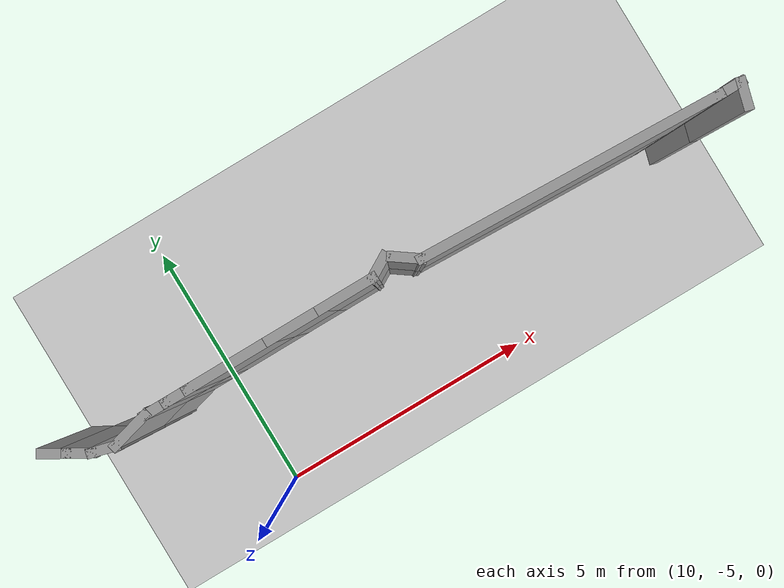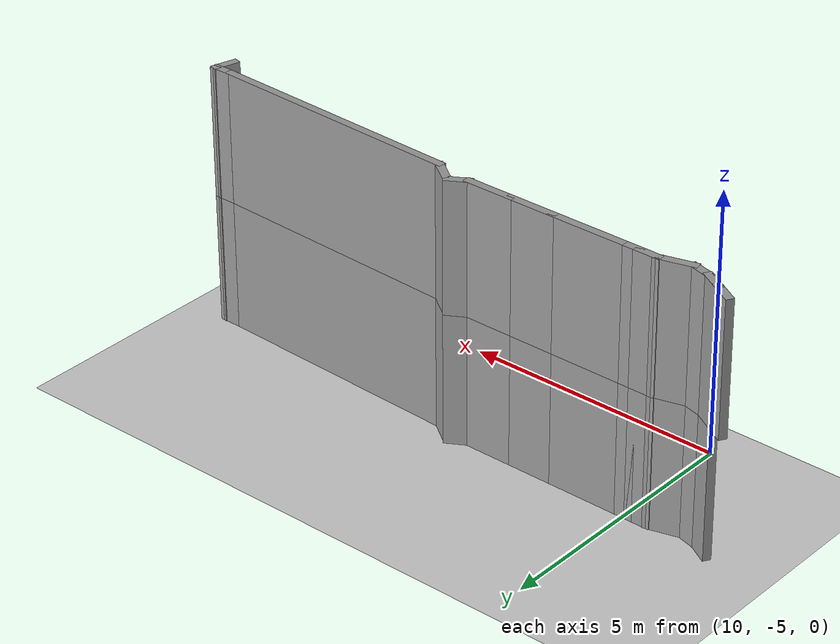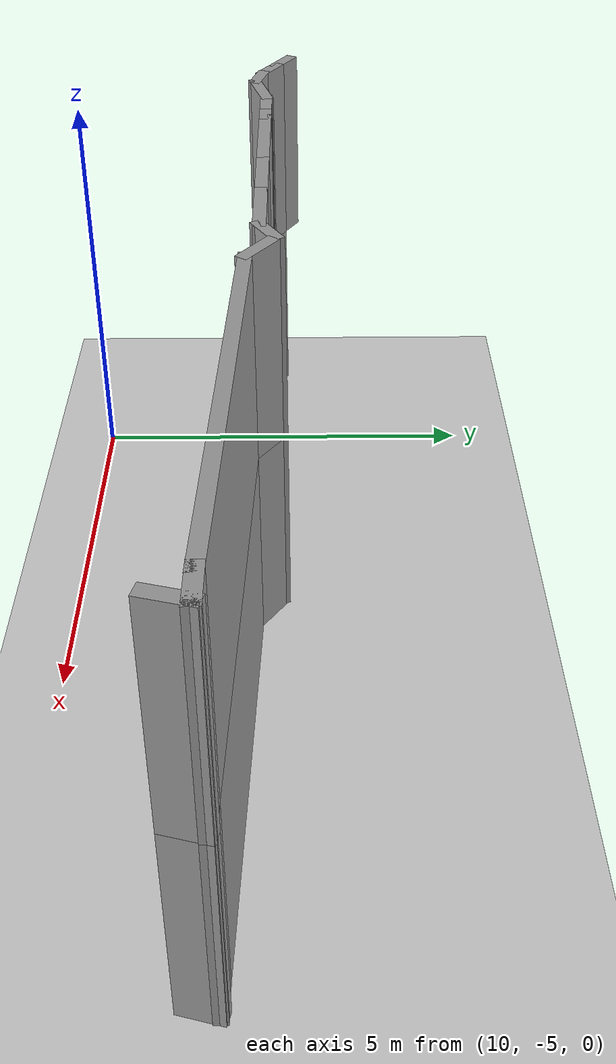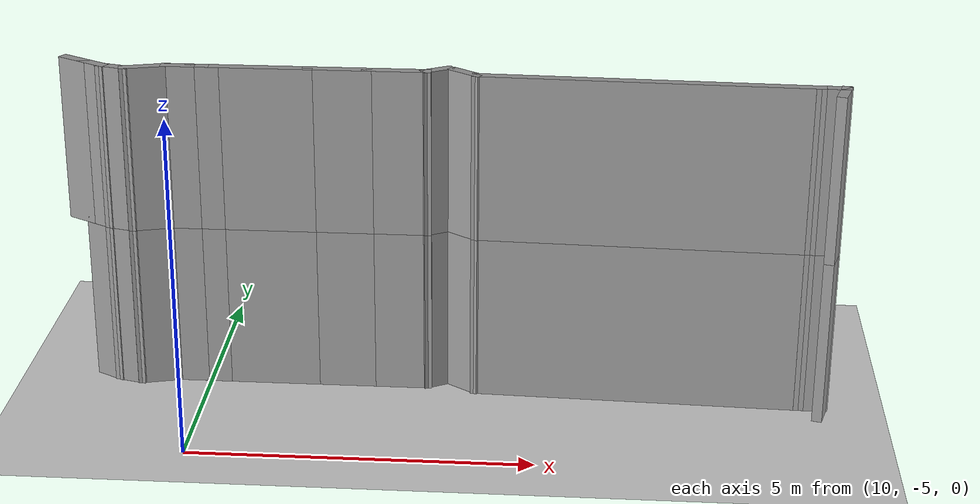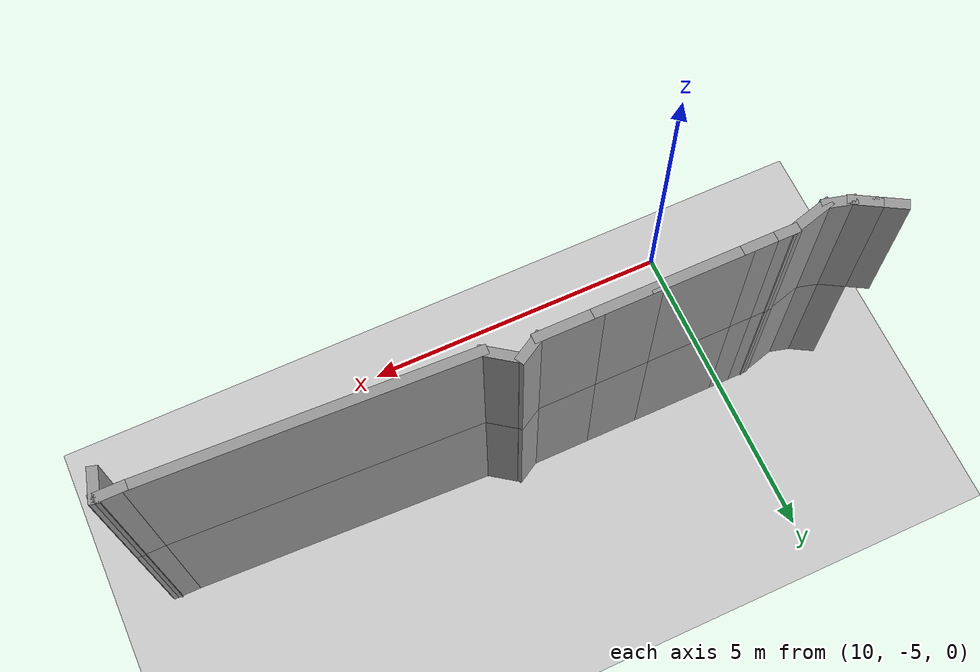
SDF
<sdf version="1.7">
 <world name="default">
  <model name="ground_plane">
   <static>1</static>
   <link name="link">
    <collision name="collision">
     <geometry><plane><normal>0 0 1</normal><size>100 100</size></plane></geometry>
     <surface>
      <contact><collide_bitmask>65535</collide_bitmask></contact>
      <friction><ode><mu>100</mu><mu2>50</mu2></ode></friction>
     </surface>
    </collision>
    <visual name="visual">
     <cast_shadows>0</cast_shadows>
     <geometry><plane><normal>0 0 1</normal><size>100 100</size></plane></geometry>
     <material>
      <script><uri>file://media/materials/scripts/gazebo.material</uri><name>Gazebo/Grey</name></script>
     </material>
    </visual>
   </link>
  </model>
  <model name="EnvDC01">
   <link name="Wall_133">
    <pose>12.4484 3.28154 0 0 -0 3.14159</pose>
    <visual name="Wall_133_Visual">
     <pose>0 0 1.25 0 -0 0</pose>
     <geometry><box><size>0.5 0.15 2.5</size></box></geometry>
     <material>
      <script><uri>file://media/materials/scripts/gazebo.material</uri><name>Gazebo/Grey</name></script>
      <ambient>1 1 1 1</ambient>
      <shader type="pixel"/>
     </material>
     <meta><layer>0</layer></meta>
    </visual>
    <collision name="Wall_133_Collision">
     <pose>0 0 1.25 0 -0 0</pose>
     <geometry><box><size>0.5 0.15 2.5</size></box></geometry>
     <surface>
      <friction>
       <ode><mu>1</mu><mu2>1</mu2><fdir1>0 0 0</fdir1><slip1>0</slip1><slip2>0</slip2></ode>
       <torsional>
        <coefficient>1</coefficient>
        <patch_radius>0</patch_radius>
        <surface_radius>0</surface_radius>
        <use_patch_radius>1</use_patch_radius>
        <ode><slip>0</slip></ode>
       </torsional>
      </friction>
      <bounce><restitution_coefficient>0</restitution_coefficient><threshold>1e+06</threshold></bounce>
      <contact>
       <collide_without_contact>0</collide_without_contact>
       <collide_without_contact_bitmask>1</collide_without_contact_bitmask>
       <collide_bitmask>1</collide_bitmask>
       <ode>
        <soft_cfm>0</soft_cfm>
        <soft_erp>0.2</soft_erp>
        <kp>1e+13</kp>
        <kd>1</kd>
        <max_vel>0.01</max_vel>
        <min_depth>0</min_depth>
       </ode>
       <bullet>
        <split_impulse>1</split_impulse>
        <split_impulse_penetration_threshold>-0.01</split_impulse_penetration_threshold>
        <soft_cfm>0</soft_cfm>
        <soft_erp>0.2</soft_erp>
        <kp>1e+13</kp>
        <kd>1</kd>
       </bullet>
      </contact>
     </surface>
    </collision>
   </link>
   <link name="Wall_134">
    <pose>9.8712 3.37676 0 0 -0 3.10198</pose>
    <visual name="Wall_134_Visual">
     <pose>0 0 1.25 0 -0 0</pose>
     <geometry><box><size>4.9582 0.15 2.5</size></box></geometry>
     <material>
      <script><uri>file://media/materials/scripts/gazebo.material</uri><name>Gazebo/Grey</name></script>
      <ambient>1 1 1 1</ambient>
      <shader type="pixel"/>
     </material>
     <meta><layer>0</layer></meta>
    </visual>
    <collision name="Wall_134_Collision">
     <pose>0 0 1.25 0 -0 0</pose>
     <geometry><box><size>4.9582 0.15 2.5</size></box></geometry>
     <surface>
      <friction>
       <ode><mu>1</mu><mu2>1</mu2><fdir1>0 0 0</fdir1><slip1>0</slip1><slip2>0</slip2></ode>
       <torsional>
        <coefficient>1</coefficient>
        <patch_radius>0</patch_radius>
        <surface_radius>0</surface_radius>
        <use_patch_radius>1</use_patch_radius>
        <ode><slip>0</slip></ode>
       </torsional>
      </friction>
      <bounce><restitution_coefficient>0</restitution_coefficient><threshold>1e+06</threshold></bounce>
      <contact>
       <collide_without_contact>0</collide_without_contact>
       <collide_without_contact_bitmask>1</collide_without_contact_bitmask>
       <collide_bitmask>1</collide_bitmask>
       <ode>
        <soft_cfm>0</soft_cfm>
        <soft_erp>0.2</soft_erp>
        <kp>1e+13</kp>
        <kd>1</kd>
        <max_vel>0.01</max_vel>
        <min_depth>0</min_depth>
       </ode>
       <bullet>
        <split_impulse>1</split_impulse>
        <split_impulse_penetration_threshold>-0.01</split_impulse_penetration_threshold>
        <soft_cfm>0</soft_cfm>
        <soft_erp>0.2</soft_erp>
        <kp>1e+13</kp>
        <kd>1</kd>
       </bullet>
      </contact>
     </surface>
    </collision>
   </link>
   <link name="Wall_135">
    <pose>7.2977 3.59466 0 0 -0 2.52004</pose>
    <visual name="Wall_135_Visual">
     <pose>0 0 1.25 0 -0 0</pose>
     <geometry><box><size>0.571407 0.15 2.5</size></box></geometry>
     <material>
      <script><uri>file://media/materials/scripts/gazebo.material</uri><name>Gazebo/Grey</name></script>
      <ambient>1 1 1 1</ambient>
      <shader type="pixel"/>
     </material>
     <meta><layer>0</layer></meta>
    </visual>
    <collision name="Wall_135_Collision">
     <pose>0 0 1.25 0 -0 0</pose>
     <geometry><box><size>0.571407 0.15 2.5</size></box></geometry>
     <surface>
      <friction>
       <ode><mu>1</mu><mu2>1</mu2><fdir1>0 0 0</fdir1><slip1>0</slip1><slip2>0</slip2></ode>
       <torsional>
        <coefficient>1</coefficient>
        <patch_radius>0</patch_radius>
        <surface_radius>0</surface_radius>
        <use_patch_radius>1</use_patch_radius>
        <ode><slip>0</slip></ode>
       </torsional>
      </friction>
      <bounce><restitution_coefficient>0</restitution_coefficient><threshold>1e+06</threshold></bounce>
      <contact>
       <collide_without_contact>0</collide_without_contact>
       <collide_without_contact_bitmask>1</collide_without_contact_bitmask>
       <collide_bitmask>1</collide_bitmask>
       <ode>
        <soft_cfm>0</soft_cfm>
        <soft_erp>0.2</soft_erp>
        <kp>1e+13</kp>
        <kd>1</kd>
        <max_vel>0.01</max_vel>
        <min_depth>0</min_depth>
       </ode>
       <bullet>
        <split_impulse>1</split_impulse>
        <split_impulse_penetration_threshold>-0.01</split_impulse_penetration_threshold>
        <soft_cfm>0</soft_cfm>
        <soft_erp>0.2</soft_erp>
        <kp>1e+13</kp>
        <kd>1</kd>
       </bullet>
      </contact>
     </surface>
    </collision>
   </link>
   <link name="Wall_143">
    <pose>6.88604 3.68358 0 0 0 -2.61799</pose>
    <visual name="Wall_143_Visual">
     <pose>0 0 1.25 0 -0 0</pose>
     <geometry><box><size>0.5 0.15 2.5</size></box></geometry>
     <material>
      <script><uri>file://media/materials/scripts/gazebo.material</uri><name>Gazebo/Grey</name></script>
      <ambient>1 1 1 1</ambient>
      <shader type="pixel"/>
     </material>
     <meta><layer>0</layer></meta>
    </visual>
    <collision name="Wall_143_Collision">
     <pose>0 0 1.25 0 -0 0</pose>
     <geometry><box><size>0.5 0.15 2.5</size></box></geometry>
     <surface>
      <friction>
       <ode><mu>1</mu><mu2>1</mu2><fdir1>0 0 0</fdir1><slip1>0</slip1><slip2>0</slip2></ode>
       <torsional>
        <coefficient>1</coefficient>
        <patch_radius>0</patch_radius>
        <surface_radius>0</surface_radius>
        <use_patch_radius>1</use_patch_radius>
        <ode><slip>0</slip></ode>
       </torsional>
      </friction>
      <bounce><restitution_coefficient>0</restitution_coefficient><threshold>1e+06</threshold></bounce>
      <contact>
       <collide_without_contact>0</collide_without_contact>
       <collide_without_contact_bitmask>1</collide_without_contact_bitmask>
       <collide_bitmask>1</collide_bitmask>
       <ode>
        <soft_cfm>0</soft_cfm>
        <soft_erp>0.2</soft_erp>
        <kp>1e+13</kp>
        <kd>1</kd>
        <max_vel>0.01</max_vel>
        <min_depth>0</min_depth>
       </ode>
       <bullet>
        <split_impulse>1</split_impulse>
        <split_impulse_penetration_threshold>-0.01</split_impulse_penetration_threshold>
        <soft_cfm>0</soft_cfm>
        <soft_erp>0.2</soft_erp>
        <kp>1e+13</kp>
        <kd>1</kd>
       </bullet>
      </contact>
     </surface>
    </collision>
   </link>
   <link name="Wall_144">
    <pose>6.30949 3.59608 0 0 -0 3.14159</pose>
    <visual name="Wall_144_Visual">
     <pose>0 0 1.25 0 -0 0</pose>
     <geometry><box><size>1 0.15 2.5</size></box></geometry>
     <material>
      <script><uri>file://media/materials/scripts/gazebo.material</uri><name>Gazebo/Grey</name></script>
      <ambient>1 1 1 1</ambient>
      <shader type="pixel"/>
     </material>
     <meta><layer>0</layer></meta>
    </visual>
    <collision name="Wall_144_Collision">
     <pose>0 0 1.25 0 -0 0</pose>
     <geometry><box><size>1 0.15 2.5</size></box></geometry>
     <surface>
      <friction>
       <ode><mu>1</mu><mu2>1</mu2><fdir1>0 0 0</fdir1><slip1>0</slip1><slip2>0</slip2></ode>
       <torsional>
        <coefficient>1</coefficient>
        <patch_radius>0</patch_radius>
        <surface_radius>0</surface_radius>
        <use_patch_radius>1</use_patch_radius>
        <ode><slip>0</slip></ode>
       </torsional>
      </friction>
      <bounce><restitution_coefficient>0</restitution_coefficient><threshold>1e+06</threshold></bounce>
      <contact>
       <collide_without_contact>0</collide_without_contact>
       <collide_without_contact_bitmask>1</collide_without_contact_bitmask>
       <collide_bitmask>1</collide_bitmask>
       <ode>
        <soft_cfm>0</soft_cfm>
        <soft_erp>0.2</soft_erp>
        <kp>1e+13</kp>
        <kd>1</kd>
        <max_vel>0.01</max_vel>
        <min_depth>0</min_depth>
       </ode>
       <bullet>
        <split_impulse>1</split_impulse>
        <split_impulse_penetration_threshold>-0.01</split_impulse_penetration_threshold>
        <soft_cfm>0</soft_cfm>
        <soft_erp>0.2</soft_erp>
        <kp>1e+13</kp>
        <kd>1</kd>
       </bullet>
      </contact>
     </surface>
    </collision>
   </link>
   <link name="Wall_146">
    <pose>5.45949 3.59608 0 0 -0 3.14159</pose>
    <visual name="Wall_146_Visual">
     <pose>0 0 1.25 0 -0 0</pose>
     <geometry><box><size>1 0.15 2.5</size></box></geometry>
     <material>
      <script><uri>file://media/materials/scripts/gazebo.material</uri><name>Gazebo/Grey</name></script>
      <ambient>1 1 1 1</ambient>
      <shader type="pixel"/>
     </material>
     <meta><layer>0</layer></meta>
    </visual>
    <collision name="Wall_146_Collision">
     <pose>0 0 1.25 0 -0 0</pose>
     <geometry><box><size>1 0.15 2.5</size></box></geometry>
     <surface>
      <friction>
       <ode><mu>1</mu><mu2>1</mu2><fdir1>0 0 0</fdir1><slip1>0</slip1><slip2>0</slip2></ode>
       <torsional>
        <coefficient>1</coefficient>
        <patch_radius>0</patch_radius>
        <surface_radius>0</surface_radius>
        <use_patch_radius>1</use_patch_radius>
        <ode><slip>0</slip></ode>
       </torsional>
      </friction>
      <bounce><restitution_coefficient>0</restitution_coefficient><threshold>1e+06</threshold></bounce>
      <contact>
       <collide_without_contact>0</collide_without_contact>
       <collide_without_contact_bitmask>1</collide_without_contact_bitmask>
       <collide_bitmask>1</collide_bitmask>
       <ode>
        <soft_cfm>0</soft_cfm>
        <soft_erp>0.2</soft_erp>
        <kp>1e+13</kp>
        <kd>1</kd>
        <max_vel>0.01</max_vel>
        <min_depth>0</min_depth>
       </ode>
       <bullet>
        <split_impulse>1</split_impulse>
        <split_impulse_penetration_threshold>-0.01</split_impulse_penetration_threshold>
        <soft_cfm>0</soft_cfm>
        <soft_erp>0.2</soft_erp>
        <kp>1e+13</kp>
        <kd>1</kd>
       </bullet>
      </contact>
     </surface>
    </collision>
   </link>
   <link name="Wall_147">
    <pose>4.35949 3.59608 0 0 -0 3.14159</pose>
    <visual name="Wall_147_Visual">
     <pose>0 0 1.25 0 -0 0</pose>
     <geometry><box><size>1.5 0.15 2.5</size></box></geometry>
     <material>
      <script><uri>file://media/materials/scripts/gazebo.material</uri><name>Gazebo/Grey</name></script>
      <ambient>1 1 1 1</ambient>
      <shader type="pixel"/>
     </material>
     <meta><layer>0</layer></meta>
    </visual>
    <collision name="Wall_147_Collision">
     <pose>0 0 1.25 0 -0 0</pose>
     <geometry><box><size>1.5 0.15 2.5</size></box></geometry>
     <surface>
      <friction>
       <ode><mu>1</mu><mu2>1</mu2><fdir1>0 0 0</fdir1><slip1>0</slip1><slip2>0</slip2></ode>
       <torsional>
        <coefficient>1</coefficient>
        <patch_radius>0</patch_radius>
        <surface_radius>0</surface_radius>
        <use_patch_radius>1</use_patch_radius>
        <ode><slip>0</slip></ode>
       </torsional>
      </friction>
      <bounce><restitution_coefficient>0</restitution_coefficient><threshold>1e+06</threshold></bounce>
      <contact>
       <collide_without_contact>0</collide_without_contact>
       <collide_without_contact_bitmask>1</collide_without_contact_bitmask>
       <collide_bitmask>1</collide_bitmask>
       <ode>
        <soft_cfm>0</soft_cfm>
        <soft_erp>0.2</soft_erp>
        <kp>1e+13</kp>
        <kd>1</kd>
        <max_vel>0.01</max_vel>
        <min_depth>0</min_depth>
       </ode>
       <bullet>
        <split_impulse>1</split_impulse>
        <split_impulse_penetration_threshold>-0.01</split_impulse_penetration_threshold>
        <soft_cfm>0</soft_cfm>
        <soft_erp>0.2</soft_erp>
        <kp>1e+13</kp>
        <kd>1</kd>
       </bullet>
      </contact>
     </surface>
    </collision>
   </link>
   <link name="Wall_148">
    <pose>3.50949 3.59608 0 0 -0 3.14159</pose>
    <visual name="Wall_148_Visual">
     <pose>0 0 1.25 0 -0 0</pose>
     <geometry><box><size>0.5 0.15 2.5</size></box></geometry>
     <material>
      <script><uri>file://media/materials/scripts/gazebo.material</uri><name>Gazebo/Grey</name></script>
      <ambient>1 1 1 1</ambient>
      <shader type="pixel"/>
     </material>
     <meta><layer>0</layer></meta>
    </visual>
    <collision name="Wall_148_Collision">
     <pose>0 0 1.25 0 -0 0</pose>
     <geometry><box><size>0.5 0.15 2.5</size></box></geometry>
     <surface>
      <friction>
       <ode><mu>1</mu><mu2>1</mu2><fdir1>0 0 0</fdir1><slip1>0</slip1><slip2>0</slip2></ode>
       <torsional>
        <coefficient>1</coefficient>
        <patch_radius>0</patch_radius>
        <surface_radius>0</surface_radius>
        <use_patch_radius>1</use_patch_radius>
        <ode><slip>0</slip></ode>
       </torsional>
      </friction>
      <bounce><restitution_coefficient>0</restitution_coefficient><threshold>1e+06</threshold></bounce>
      <contact>
       <collide_without_contact>0</collide_without_contact>
       <collide_without_contact_bitmask>1</collide_without_contact_bitmask>
       <collide_bitmask>1</collide_bitmask>
       <ode>
        <soft_cfm>0</soft_cfm>
        <soft_erp>0.2</soft_erp>
        <kp>1e+13</kp>
        <kd>1</kd>
        <max_vel>0.01</max_vel>
        <min_depth>0</min_depth>
       </ode>
       <bullet>
        <split_impulse>1</split_impulse>
        <split_impulse_penetration_threshold>-0.01</split_impulse_penetration_threshold>
        <soft_cfm>0</soft_cfm>
        <soft_erp>0.2</soft_erp>
        <kp>1e+13</kp>
        <kd>1</kd>
       </bullet>
      </contact>
     </surface>
    </collision>
   </link>
   <link name="Wall_149">
    <pose>3.15949 3.59608 0 0 -0 3.14159</pose>
    <visual name="Wall_149_Visual">
     <pose>0 0 1.25 0 -0 0</pose>
     <geometry><box><size>0.5 0.15 2.5</size></box></geometry>
     <material>
      <script><uri>file://media/materials/scripts/gazebo.material</uri><name>Gazebo/Grey</name></script>
      <ambient>1 1 1 1</ambient>
      <shader type="pixel"/>
     </material>
     <meta><layer>0</layer></meta>
    </visual>
    <collision name="Wall_149_Collision">
     <pose>0 0 1.25 0 -0 0</pose>
     <geometry><box><size>0.5 0.15 2.5</size></box></geometry>
     <surface>
      <friction>
       <ode><mu>1</mu><mu2>1</mu2><fdir1>0 0 0</fdir1><slip1>0</slip1><slip2>0</slip2></ode>
       <torsional>
        <coefficient>1</coefficient>
        <patch_radius>0</patch_radius>
        <surface_radius>0</surface_radius>
        <use_patch_radius>1</use_patch_radius>
        <ode><slip>0</slip></ode>
       </torsional>
      </friction>
      <bounce><restitution_coefficient>0</restitution_coefficient><threshold>1e+06</threshold></bounce>
      <contact>
       <collide_without_contact>0</collide_without_contact>
       <collide_without_contact_bitmask>1</collide_without_contact_bitmask>
       <collide_bitmask>1</collide_bitmask>
       <ode>
        <soft_cfm>0</soft_cfm>
        <soft_erp>0.2</soft_erp>
        <kp>1e+13</kp>
        <kd>1</kd>
        <max_vel>0.01</max_vel>
        <min_depth>0</min_depth>
       </ode>
       <bullet>
        <split_impulse>1</split_impulse>
        <split_impulse_penetration_threshold>-0.01</split_impulse_penetration_threshold>
        <soft_cfm>0</soft_cfm>
        <soft_erp>0.2</soft_erp>
        <kp>1e+13</kp>
        <kd>1</kd>
       </bullet>
      </contact>
     </surface>
    </collision>
   </link>
   <link name="Wall_150">
    <pose>2.69471 3.51844 0 0 0 -2.87979</pose>
    <visual name="Wall_150_Visual">
     <pose>0 0 1.25 0 -0 0</pose>
     <geometry><box><size>0.75 0.15 2.5</size></box></geometry>
     <material>
      <script><uri>file://media/materials/scripts/gazebo.material</uri><name>Gazebo/Grey</name></script>
      <ambient>1 1 1 1</ambient>
      <shader type="pixel"/>
     </material>
     <meta><layer>0</layer></meta>
    </visual>
    <collision name="Wall_150_Collision">
     <pose>0 0 1.25 0 -0 0</pose>
     <geometry><box><size>0.75 0.15 2.5</size></box></geometry>
     <surface>
      <friction>
       <ode><mu>1</mu><mu2>1</mu2><fdir1>0 0 0</fdir1><slip1>0</slip1><slip2>0</slip2></ode>
       <torsional>
        <coefficient>1</coefficient>
        <patch_radius>0</patch_radius>
        <surface_radius>0</surface_radius>
        <use_patch_radius>1</use_patch_radius>
        <ode><slip>0</slip></ode>
       </torsional>
      </friction>
      <bounce><restitution_coefficient>0</restitution_coefficient><threshold>1e+06</threshold></bounce>
      <contact>
       <collide_without_contact>0</collide_without_contact>
       <collide_without_contact_bitmask>1</collide_without_contact_bitmask>
       <collide_bitmask>1</collide_bitmask>
       <ode>
        <soft_cfm>0</soft_cfm>
        <soft_erp>0.2</soft_erp>
        <kp>1e+13</kp>
        <kd>1</kd>
        <max_vel>0.01</max_vel>
        <min_depth>0</min_depth>
       </ode>
       <bullet>
        <split_impulse>1</split_impulse>
        <split_impulse_penetration_threshold>-0.01</split_impulse_penetration_threshold>
        <soft_cfm>0</soft_cfm>
        <soft_erp>0.2</soft_erp>
        <kp>1e+13</kp>
        <kd>1</kd>
       </bullet>
      </contact>
     </surface>
    </collision>
   </link>
   <link name="Wall_151">
    <pose>2.2359 3.48608 0 0 -0 2.87979</pose>
    <visual name="Wall_151_Visual">
     <pose>0 0 1.25 0 -0 0</pose>
     <geometry><box><size>0.5 0.15 2.5</size></box></geometry>
     <material>
      <script><uri>file://media/materials/scripts/gazebo.material</uri><name>Gazebo/Grey</name></script>
      <ambient>1 1 1 1</ambient>
      <shader type="pixel"/>
     </material>
     <meta><layer>0</layer></meta>
    </visual>
    <collision name="Wall_151_Collision">
     <pose>0 0 1.25 0 -0 0</pose>
     <geometry><box><size>0.5 0.15 2.5</size></box></geometry>
     <surface>
      <friction>
       <ode><mu>1</mu><mu2>1</mu2><fdir1>0 0 0</fdir1><slip1>0</slip1><slip2>0</slip2></ode>
       <torsional>
        <coefficient>1</coefficient>
        <patch_radius>0</patch_radius>
        <surface_radius>0</surface_radius>
        <use_patch_radius>1</use_patch_radius>
        <ode><slip>0</slip></ode>
       </torsional>
      </friction>
      <bounce><restitution_coefficient>0</restitution_coefficient><threshold>1e+06</threshold></bounce>
      <contact>
       <collide_without_contact>0</collide_without_contact>
       <collide_without_contact_bitmask>1</collide_without_contact_bitmask>
       <collide_bitmask>1</collide_bitmask>
       <ode>
        <soft_cfm>0</soft_cfm>
        <soft_erp>0.2</soft_erp>
        <kp>1e+13</kp>
        <kd>1</kd>
        <max_vel>0.01</max_vel>
        <min_depth>0</min_depth>
       </ode>
       <bullet>
        <split_impulse>1</split_impulse>
        <split_impulse_penetration_threshold>-0.01</split_impulse_penetration_threshold>
        <soft_cfm>0</soft_cfm>
        <soft_erp>0.2</soft_erp>
        <kp>1e+13</kp>
        <kd>1</kd>
       </bullet>
      </contact>
     </surface>
    </collision>
   </link>
   <link name="Wall_152">
    <pose>1.91531 3.61888 0 0 -0 2.61799</pose>
    <visual name="Wall_152_Visual">
     <pose>0 0 1.25 0 -0 0</pose>
     <geometry><box><size>0.5 0.15 2.5</size></box></geometry>
     <material>
      <script><uri>file://media/materials/scripts/gazebo.material</uri><name>Gazebo/Grey</name></script>
      <ambient>1 1 1 1</ambient>
      <shader type="pixel"/>
     </material>
     <meta><layer>0</layer></meta>
    </visual>
    <collision name="Wall_152_Collision">
     <pose>0 0 1.25 0 -0 0</pose>
     <geometry><box><size>0.5 0.15 2.5</size></box></geometry>
     <surface>
      <friction>
       <ode><mu>1</mu><mu2>1</mu2><fdir1>0 0 0</fdir1><slip1>0</slip1><slip2>0</slip2></ode>
       <torsional>
        <coefficient>1</coefficient>
        <patch_radius>0</patch_radius>
        <surface_radius>0</surface_radius>
        <use_patch_radius>1</use_patch_radius>
        <ode><slip>0</slip></ode>
       </torsional>
      </friction>
      <bounce><restitution_coefficient>0</restitution_coefficient><threshold>1e+06</threshold></bounce>
      <contact>
       <collide_without_contact>0</collide_without_contact>
       <collide_without_contact_bitmask>1</collide_without_contact_bitmask>
       <collide_bitmask>1</collide_bitmask>
       <ode>
        <soft_cfm>0</soft_cfm>
        <soft_erp>0.2</soft_erp>
        <kp>1e+13</kp>
        <kd>1</kd>
        <max_vel>0.01</max_vel>
        <min_depth>0</min_depth>
       </ode>
       <bullet>
        <split_impulse>1</split_impulse>
        <split_impulse_penetration_threshold>-0.01</split_impulse_penetration_threshold>
        <soft_cfm>0</soft_cfm>
        <soft_erp>0.2</soft_erp>
        <kp>1e+13</kp>
        <kd>1</kd>
       </bullet>
      </contact>
     </surface>
    </collision>
   </link>
   <link name="Wall_264">
    <pose>12.5781 3.11251 2.5 0 0 -1.8326</pose>
    <visual name="Wall_264_Visual">
     <pose>0 0 1.25 0 -0 0</pose>
     <geometry><box><size>0.5 0.15 2.5</size></box></geometry>
     <material>
      <script><uri>file://media/materials/scripts/gazebo.material</uri><name>Gazebo/Grey</name></script>
      <ambient>1 1 1 1</ambient>
      <shader type="pixel"/>
     </material>
     <meta><layer>1</layer></meta>
    </visual>
    <collision name="Wall_264_Collision">
     <pose>0 0 1.25 0 -0 0</pose>
     <geometry><box><size>0.5 0.15 2.5</size></box></geometry>
     <surface>
      <friction>
       <ode><mu>1</mu><mu2>1</mu2><fdir1>0 0 0</fdir1><slip1>0</slip1><slip2>0</slip2></ode>
       <torsional>
        <coefficient>1</coefficient>
        <patch_radius>0</patch_radius>
        <surface_radius>0</surface_radius>
        <use_patch_radius>1</use_patch_radius>
        <ode><slip>0</slip></ode>
       </torsional>
      </friction>
      <bounce><restitution_coefficient>0</restitution_coefficient><threshold>1e+06</threshold></bounce>
      <contact>
       <collide_without_contact>0</collide_without_contact>
       <collide_without_contact_bitmask>1</collide_without_contact_bitmask>
       <collide_bitmask>1</collide_bitmask>
       <ode>
        <soft_cfm>0</soft_cfm>
        <soft_erp>0.2</soft_erp>
        <kp>1e+13</kp>
        <kd>1</kd>
        <max_vel>0.01</max_vel>
        <min_depth>0</min_depth>
       </ode>
       <bullet>
        <split_impulse>1</split_impulse>
        <split_impulse_penetration_threshold>-0.01</split_impulse_penetration_threshold>
        <soft_cfm>0</soft_cfm>
        <soft_erp>0.2</soft_erp>
        <kp>1e+13</kp>
        <kd>1</kd>
       </bullet>
      </contact>
     </surface>
    </collision>
   </link>
   <link name="Wall_329">
    <pose>12.4484 3.28154 2.5 0 -0 3.14159</pose>
    <visual name="Wall_329_Visual">
     <pose>0 0 1.25 0 -0 0</pose>
     <geometry><box><size>0.5 0.15 2.5</size></box></geometry>
     <material>
      <script><uri>file://media/materials/scripts/gazebo.material</uri><name>Gazebo/Grey</name></script>
      <ambient>1 1 1 1</ambient>
      <shader type="pixel"/>
     </material>
     <meta><layer>1</layer></meta>
    </visual>
    <collision name="Wall_329_Collision">
     <pose>0 0 1.25 0 -0 0</pose>
     <geometry><box><size>0.5 0.15 2.5</size></box></geometry>
     <surface>
      <friction>
       <ode><mu>1</mu><mu2>1</mu2><fdir1>0 0 0</fdir1><slip1>0</slip1><slip2>0</slip2></ode>
       <torsional>
        <coefficient>1</coefficient>
        <patch_radius>0</patch_radius>
        <surface_radius>0</surface_radius>
        <use_patch_radius>1</use_patch_radius>
        <ode><slip>0</slip></ode>
       </torsional>
      </friction>
      <bounce><restitution_coefficient>0</restitution_coefficient><threshold>1e+06</threshold></bounce>
      <contact>
       <collide_without_contact>0</collide_without_contact>
       <collide_without_contact_bitmask>1</collide_without_contact_bitmask>
       <collide_bitmask>1</collide_bitmask>
       <ode>
        <soft_cfm>0</soft_cfm>
        <soft_erp>0.2</soft_erp>
        <kp>1e+13</kp>
        <kd>1</kd>
        <max_vel>0.01</max_vel>
        <min_depth>0</min_depth>
       </ode>
       <bullet>
        <split_impulse>1</split_impulse>
        <split_impulse_penetration_threshold>-0.01</split_impulse_penetration_threshold>
        <soft_cfm>0</soft_cfm>
        <soft_erp>0.2</soft_erp>
        <kp>1e+13</kp>
        <kd>1</kd>
       </bullet>
      </contact>
     </surface>
    </collision>
   </link>
   <link name="Wall_330">
    <pose>9.8712 3.37676 2.5 0 -0 3.10198</pose>
    <visual name="Wall_330_Visual">
     <pose>0 0 1.25 0 -0 0</pose>
     <geometry><box><size>4.9582 0.15 2.5</size></box></geometry>
     <material>
      <script><uri>file://media/materials/scripts/gazebo.material</uri><name>Gazebo/Grey</name></script>
      <ambient>1 1 1 1</ambient>
      <shader type="pixel"/>
     </material>
     <meta><layer>1</layer></meta>
    </visual>
    <collision name="Wall_330_Collision">
     <pose>0 0 1.25 0 -0 0</pose>
     <geometry><box><size>4.9582 0.15 2.5</size></box></geometry>
     <surface>
      <friction>
       <ode><mu>1</mu><mu2>1</mu2><fdir1>0 0 0</fdir1><slip1>0</slip1><slip2>0</slip2></ode>
       <torsional>
        <coefficient>1</coefficient>
        <patch_radius>0</patch_radius>
        <surface_radius>0</surface_radius>
        <use_patch_radius>1</use_patch_radius>
        <ode><slip>0</slip></ode>
       </torsional>
      </friction>
      <bounce><restitution_coefficient>0</restitution_coefficient><threshold>1e+06</threshold></bounce>
      <contact>
       <collide_without_contact>0</collide_without_contact>
       <collide_without_contact_bitmask>1</collide_without_contact_bitmask>
       <collide_bitmask>1</collide_bitmask>
       <ode>
        <soft_cfm>0</soft_cfm>
        <soft_erp>0.2</soft_erp>
        <kp>1e+13</kp>
        <kd>1</kd>
        <max_vel>0.01</max_vel>
        <min_depth>0</min_depth>
       </ode>
       <bullet>
        <split_impulse>1</split_impulse>
        <split_impulse_penetration_threshold>-0.01</split_impulse_penetration_threshold>
        <soft_cfm>0</soft_cfm>
        <soft_erp>0.2</soft_erp>
        <kp>1e+13</kp>
        <kd>1</kd>
       </bullet>
      </contact>
     </surface>
    </collision>
   </link>
   <link name="Wall_331">
    <pose>7.2977 3.59466 2.5 0 -0 2.52004</pose>
    <visual name="Wall_331_Visual">
     <pose>0 0 1.25 0 -0 0</pose>
     <geometry><box><size>0.571407 0.15 2.5</size></box></geometry>
     <material>
      <script><uri>file://media/materials/scripts/gazebo.material</uri><name>Gazebo/Grey</name></script>
      <ambient>1 1 1 1</ambient>
      <shader type="pixel"/>
     </material>
     <meta><layer>1</layer></meta>
    </visual>
    <collision name="Wall_331_Collision">
     <pose>0 0 1.25 0 -0 0</pose>
     <geometry><box><size>0.571407 0.15 2.5</size></box></geometry>
     <surface>
      <friction>
       <ode><mu>1</mu><mu2>1</mu2><fdir1>0 0 0</fdir1><slip1>0</slip1><slip2>0</slip2></ode>
       <torsional>
        <coefficient>1</coefficient>
        <patch_radius>0</patch_radius>
        <surface_radius>0</surface_radius>
        <use_patch_radius>1</use_patch_radius>
        <ode><slip>0</slip></ode>
       </torsional>
      </friction>
      <bounce><restitution_coefficient>0</restitution_coefficient><threshold>1e+06</threshold></bounce>
      <contact>
       <collide_without_contact>0</collide_without_contact>
       <collide_without_contact_bitmask>1</collide_without_contact_bitmask>
       <collide_bitmask>1</collide_bitmask>
       <ode>
        <soft_cfm>0</soft_cfm>
        <soft_erp>0.2</soft_erp>
        <kp>1e+13</kp>
        <kd>1</kd>
        <max_vel>0.01</max_vel>
        <min_depth>0</min_depth>
       </ode>
       <bullet>
        <split_impulse>1</split_impulse>
        <split_impulse_penetration_threshold>-0.01</split_impulse_penetration_threshold>
        <soft_cfm>0</soft_cfm>
        <soft_erp>0.2</soft_erp>
        <kp>1e+13</kp>
        <kd>1</kd>
       </bullet>
      </contact>
     </surface>
    </collision>
   </link>
   <link name="Wall_333">
    <pose>6.88604 3.68358 2.5 0 0 -2.61799</pose>
    <visual name="Wall_333_Visual">
     <pose>0 0 1.25 0 -0 0</pose>
     <geometry><box><size>0.5 0.15 2.5</size></box></geometry>
     <material>
      <script><uri>file://media/materials/scripts/gazebo.material</uri><name>Gazebo/Grey</name></script>
      <ambient>1 1 1 1</ambient>
      <shader type="pixel"/>
     </material>
     <meta><layer>1</layer></meta>
    </visual>
    <collision name="Wall_333_Collision">
     <pose>0 0 1.25 0 -0 0</pose>
     <geometry><box><size>0.5 0.15 2.5</size></box></geometry>
     <surface>
      <friction>
       <ode><mu>1</mu><mu2>1</mu2><fdir1>0 0 0</fdir1><slip1>0</slip1><slip2>0</slip2></ode>
       <torsional>
        <coefficient>1</coefficient>
        <patch_radius>0</patch_radius>
        <surface_radius>0</surface_radius>
        <use_patch_radius>1</use_patch_radius>
        <ode><slip>0</slip></ode>
       </torsional>
      </friction>
      <bounce><restitution_coefficient>0</restitution_coefficient><threshold>1e+06</threshold></bounce>
      <contact>
       <collide_without_contact>0</collide_without_contact>
       <collide_without_contact_bitmask>1</collide_without_contact_bitmask>
       <collide_bitmask>1</collide_bitmask>
       <ode>
        <soft_cfm>0</soft_cfm>
        <soft_erp>0.2</soft_erp>
        <kp>1e+13</kp>
        <kd>1</kd>
        <max_vel>0.01</max_vel>
        <min_depth>0</min_depth>
       </ode>
       <bullet>
        <split_impulse>1</split_impulse>
        <split_impulse_penetration_threshold>-0.01</split_impulse_penetration_threshold>
        <soft_cfm>0</soft_cfm>
        <soft_erp>0.2</soft_erp>
        <kp>1e+13</kp>
        <kd>1</kd>
       </bullet>
      </contact>
     </surface>
    </collision>
   </link>
   <link name="Wall_334">
    <pose>6.30949 3.59608 2.5 0 -0 3.14159</pose>
    <visual name="Wall_334_Visual">
     <pose>0 0 1.25 0 -0 0</pose>
     <geometry><box><size>1 0.15 2.5</size></box></geometry>
     <material>
      <script><uri>file://media/materials/scripts/gazebo.material</uri><name>Gazebo/Grey</name></script>
      <ambient>1 1 1 1</ambient>
      <shader type="pixel"/>
     </material>
     <meta><layer>1</layer></meta>
    </visual>
    <collision name="Wall_334_Collision">
     <pose>0 0 1.25 0 -0 0</pose>
     <geometry><box><size>1 0.15 2.5</size></box></geometry>
     <surface>
      <friction>
       <ode><mu>1</mu><mu2>1</mu2><fdir1>0 0 0</fdir1><slip1>0</slip1><slip2>0</slip2></ode>
       <torsional>
        <coefficient>1</coefficient>
        <patch_radius>0</patch_radius>
        <surface_radius>0</surface_radius>
        <use_patch_radius>1</use_patch_radius>
        <ode><slip>0</slip></ode>
       </torsional>
      </friction>
      <bounce><restitution_coefficient>0</restitution_coefficient><threshold>1e+06</threshold></bounce>
      <contact>
       <collide_without_contact>0</collide_without_contact>
       <collide_without_contact_bitmask>1</collide_without_contact_bitmask>
       <collide_bitmask>1</collide_bitmask>
       <ode>
        <soft_cfm>0</soft_cfm>
        <soft_erp>0.2</soft_erp>
        <kp>1e+13</kp>
        <kd>1</kd>
        <max_vel>0.01</max_vel>
        <min_depth>0</min_depth>
       </ode>
       <bullet>
        <split_impulse>1</split_impulse>
        <split_impulse_penetration_threshold>-0.01</split_impulse_penetration_threshold>
        <soft_cfm>0</soft_cfm>
        <soft_erp>0.2</soft_erp>
        <kp>1e+13</kp>
        <kd>1</kd>
       </bullet>
      </contact>
     </surface>
    </collision>
   </link>
   <link name="Wall_335">
    <pose>5.45949 3.59608 2.5 0 -0 3.14159</pose>
    <visual name="Wall_335_Visual">
     <pose>0 0 1.25 0 -0 0</pose>
     <geometry><box><size>1 0.15 2.5</size></box></geometry>
     <material>
      <script><uri>file://media/materials/scripts/gazebo.material</uri><name>Gazebo/Grey</name></script>
      <ambient>1 1 1 1</ambient>
      <shader type="pixel"/>
     </material>
     <meta><layer>1</layer></meta>
    </visual>
    <collision name="Wall_335_Collision">
     <pose>0 0 1.25 0 -0 0</pose>
     <geometry><box><size>1 0.15 2.5</size></box></geometry>
     <surface>
      <friction>
       <ode><mu>1</mu><mu2>1</mu2><fdir1>0 0 0</fdir1><slip1>0</slip1><slip2>0</slip2></ode>
       <torsional>
        <coefficient>1</coefficient>
        <patch_radius>0</patch_radius>
        <surface_radius>0</surface_radius>
        <use_patch_radius>1</use_patch_radius>
        <ode><slip>0</slip></ode>
       </torsional>
      </friction>
      <bounce><restitution_coefficient>0</restitution_coefficient><threshold>1e+06</threshold></bounce>
      <contact>
       <collide_without_contact>0</collide_without_contact>
       <collide_without_contact_bitmask>1</collide_without_contact_bitmask>
       <collide_bitmask>1</collide_bitmask>
       <ode>
        <soft_cfm>0</soft_cfm>
        <soft_erp>0.2</soft_erp>
        <kp>1e+13</kp>
        <kd>1</kd>
        <max_vel>0.01</max_vel>
        <min_depth>0</min_depth>
       </ode>
       <bullet>
        <split_impulse>1</split_impulse>
        <split_impulse_penetration_threshold>-0.01</split_impulse_penetration_threshold>
        <soft_cfm>0</soft_cfm>
        <soft_erp>0.2</soft_erp>
        <kp>1e+13</kp>
        <kd>1</kd>
       </bullet>
      </contact>
     </surface>
    </collision>
   </link>
   <link name="Wall_336">
    <pose>4.35949 3.59608 2.5 0 -0 3.14159</pose>
    <visual name="Wall_336_Visual">
     <pose>0 0 1.25 0 -0 0</pose>
     <geometry><box><size>1.5 0.15 2.5</size></box></geometry>
     <material>
      <script><uri>file://media/materials/scripts/gazebo.material</uri><name>Gazebo/Grey</name></script>
      <ambient>1 1 1 1</ambient>
      <shader type="pixel"/>
     </material>
     <meta><layer>1</layer></meta>
    </visual>
    <collision name="Wall_336_Collision">
     <pose>0 0 1.25 0 -0 0</pose>
     <geometry><box><size>1.5 0.15 2.5</size></box></geometry>
     <surface>
      <friction>
       <ode><mu>1</mu><mu2>1</mu2><fdir1>0 0 0</fdir1><slip1>0</slip1><slip2>0</slip2></ode>
       <torsional>
        <coefficient>1</coefficient>
        <patch_radius>0</patch_radius>
        <surface_radius>0</surface_radius>
        <use_patch_radius>1</use_patch_radius>
        <ode><slip>0</slip></ode>
       </torsional>
      </friction>
      <bounce><restitution_coefficient>0</restitution_coefficient><threshold>1e+06</threshold></bounce>
      <contact>
       <collide_without_contact>0</collide_without_contact>
       <collide_without_contact_bitmask>1</collide_without_contact_bitmask>
       <collide_bitmask>1</collide_bitmask>
       <ode>
        <soft_cfm>0</soft_cfm>
        <soft_erp>0.2</soft_erp>
        <kp>1e+13</kp>
        <kd>1</kd>
        <max_vel>0.01</max_vel>
        <min_depth>0</min_depth>
       </ode>
       <bullet>
        <split_impulse>1</split_impulse>
        <split_impulse_penetration_threshold>-0.01</split_impulse_penetration_threshold>
        <soft_cfm>0</soft_cfm>
        <soft_erp>0.2</soft_erp>
        <kp>1e+13</kp>
        <kd>1</kd>
       </bullet>
      </contact>
     </surface>
    </collision>
   </link>
   <link name="Wall_337">
    <pose>3.50949 3.59608 2.5 0 -0 3.14159</pose>
    <visual name="Wall_337_Visual">
     <pose>0 0 1.25 0 -0 0</pose>
     <geometry><box><size>0.5 0.15 2.5</size></box></geometry>
     <material>
      <script><uri>file://media/materials/scripts/gazebo.material</uri><name>Gazebo/Grey</name></script>
      <ambient>1 1 1 1</ambient>
      <shader type="pixel"/>
     </material>
     <meta><layer>1</layer></meta>
    </visual>
    <collision name="Wall_337_Collision">
     <pose>0 0 1.25 0 -0 0</pose>
     <geometry><box><size>0.5 0.15 2.5</size></box></geometry>
     <surface>
      <friction>
       <ode><mu>1</mu><mu2>1</mu2><fdir1>0 0 0</fdir1><slip1>0</slip1><slip2>0</slip2></ode>
       <torsional>
        <coefficient>1</coefficient>
        <patch_radius>0</patch_radius>
        <surface_radius>0</surface_radius>
        <use_patch_radius>1</use_patch_radius>
        <ode><slip>0</slip></ode>
       </torsional>
      </friction>
      <bounce><restitution_coefficient>0</restitution_coefficient><threshold>1e+06</threshold></bounce>
      <contact>
       <collide_without_contact>0</collide_without_contact>
       <collide_without_contact_bitmask>1</collide_without_contact_bitmask>
       <collide_bitmask>1</collide_bitmask>
       <ode>
        <soft_cfm>0</soft_cfm>
        <soft_erp>0.2</soft_erp>
        <kp>1e+13</kp>
        <kd>1</kd>
        <max_vel>0.01</max_vel>
        <min_depth>0</min_depth>
       </ode>
       <bullet>
        <split_impulse>1</split_impulse>
        <split_impulse_penetration_threshold>-0.01</split_impulse_penetration_threshold>
        <soft_cfm>0</soft_cfm>
        <soft_erp>0.2</soft_erp>
        <kp>1e+13</kp>
        <kd>1</kd>
       </bullet>
      </contact>
     </surface>
    </collision>
   </link>
   <link name="Wall_338">
    <pose>3.15949 3.59608 2.5 0 -0 3.14159</pose>
    <visual name="Wall_338_Visual">
     <pose>0 0 1.25 0 -0 0</pose>
     <geometry><box><size>0.5 0.15 2.5</size></box></geometry>
     <material>
      <script><uri>file://media/materials/scripts/gazebo.material</uri><name>Gazebo/Grey</name></script>
      <ambient>1 1 1 1</ambient>
      <shader type="pixel"/>
     </material>
     <meta><layer>1</layer></meta>
    </visual>
    <collision name="Wall_338_Collision">
     <pose>0 0 1.25 0 -0 0</pose>
     <geometry><box><size>0.5 0.15 2.5</size></box></geometry>
     <surface>
      <friction>
       <ode><mu>1</mu><mu2>1</mu2><fdir1>0 0 0</fdir1><slip1>0</slip1><slip2>0</slip2></ode>
       <torsional>
        <coefficient>1</coefficient>
        <patch_radius>0</patch_radius>
        <surface_radius>0</surface_radius>
        <use_patch_radius>1</use_patch_radius>
        <ode><slip>0</slip></ode>
       </torsional>
      </friction>
      <bounce><restitution_coefficient>0</restitution_coefficient><threshold>1e+06</threshold></bounce>
      <contact>
       <collide_without_contact>0</collide_without_contact>
       <collide_without_contact_bitmask>1</collide_without_contact_bitmask>
       <collide_bitmask>1</collide_bitmask>
       <ode>
        <soft_cfm>0</soft_cfm>
        <soft_erp>0.2</soft_erp>
        <kp>1e+13</kp>
        <kd>1</kd>
        <max_vel>0.01</max_vel>
        <min_depth>0</min_depth>
       </ode>
       <bullet>
        <split_impulse>1</split_impulse>
        <split_impulse_penetration_threshold>-0.01</split_impulse_penetration_threshold>
        <soft_cfm>0</soft_cfm>
        <soft_erp>0.2</soft_erp>
        <kp>1e+13</kp>
        <kd>1</kd>
       </bullet>
      </contact>
     </surface>
    </collision>
   </link>
   <link name="Wall_339">
    <pose>2.69471 3.51844 2.5 0 0 -2.87979</pose>
    <visual name="Wall_339_Visual">
     <pose>0 0 1.25 0 -0 0</pose>
     <geometry><box><size>0.75 0.15 2.5</size></box></geometry>
     <material>
      <script><uri>file://media/materials/scripts/gazebo.material</uri><name>Gazebo/Grey</name></script>
      <ambient>1 1 1 1</ambient>
      <shader type="pixel"/>
     </material>
     <meta><layer>1</layer></meta>
    </visual>
    <collision name="Wall_339_Collision">
     <pose>0 0 1.25 0 -0 0</pose>
     <geometry><box><size>0.75 0.15 2.5</size></box></geometry>
     <surface>
      <friction>
       <ode><mu>1</mu><mu2>1</mu2><fdir1>0 0 0</fdir1><slip1>0</slip1><slip2>0</slip2></ode>
       <torsional>
        <coefficient>1</coefficient>
        <patch_radius>0</patch_radius>
        <surface_radius>0</surface_radius>
        <use_patch_radius>1</use_patch_radius>
        <ode><slip>0</slip></ode>
       </torsional>
      </friction>
      <bounce><restitution_coefficient>0</restitution_coefficient><threshold>1e+06</threshold></bounce>
      <contact>
       <collide_without_contact>0</collide_without_contact>
       <collide_without_contact_bitmask>1</collide_without_contact_bitmask>
       <collide_bitmask>1</collide_bitmask>
       <ode>
        <soft_cfm>0</soft_cfm>
        <soft_erp>0.2</soft_erp>
        <kp>1e+13</kp>
        <kd>1</kd>
        <max_vel>0.01</max_vel>
        <min_depth>0</min_depth>
       </ode>
       <bullet>
        <split_impulse>1</split_impulse>
        <split_impulse_penetration_threshold>-0.01</split_impulse_penetration_threshold>
        <soft_cfm>0</soft_cfm>
        <soft_erp>0.2</soft_erp>
        <kp>1e+13</kp>
        <kd>1</kd>
       </bullet>
      </contact>
     </surface>
    </collision>
   </link>
   <link name="Wall_340">
    <pose>2.2359 3.48608 2.5 0 -0 2.87979</pose>
    <visual name="Wall_340_Visual">
     <pose>0 0 1.25 0 -0 0</pose>
     <geometry><box><size>0.5 0.15 2.5</size></box></geometry>
     <material>
      <script><uri>file://media/materials/scripts/gazebo.material</uri><name>Gazebo/Grey</name></script>
      <ambient>1 1 1 1</ambient>
      <shader type="pixel"/>
     </material>
     <meta><layer>1</layer></meta>
    </visual>
    <collision name="Wall_340_Collision">
     <pose>0 0 1.25 0 -0 0</pose>
     <geometry><box><size>0.5 0.15 2.5</size></box></geometry>
     <surface>
      <friction>
       <ode><mu>1</mu><mu2>1</mu2><fdir1>0 0 0</fdir1><slip1>0</slip1><slip2>0</slip2></ode>
       <torsional>
        <coefficient>1</coefficient>
        <patch_radius>0</patch_radius>
        <surface_radius>0</surface_radius>
        <use_patch_radius>1</use_patch_radius>
        <ode><slip>0</slip></ode>
       </torsional>
      </friction>
      <bounce><restitution_coefficient>0</restitution_coefficient><threshold>1e+06</threshold></bounce>
      <contact>
       <collide_without_contact>0</collide_without_contact>
       <collide_without_contact_bitmask>1</collide_without_contact_bitmask>
       <collide_bitmask>1</collide_bitmask>
       <ode>
        <soft_cfm>0</soft_cfm>
        <soft_erp>0.2</soft_erp>
        <kp>1e+13</kp>
        <kd>1</kd>
        <max_vel>0.01</max_vel>
        <min_depth>0</min_depth>
       </ode>
       <bullet>
        <split_impulse>1</split_impulse>
        <split_impulse_penetration_threshold>-0.01</split_impulse_penetration_threshold>
        <soft_cfm>0</soft_cfm>
        <soft_erp>0.2</soft_erp>
        <kp>1e+13</kp>
        <kd>1</kd>
       </bullet>
      </contact>
     </surface>
    </collision>
   </link>
   <link name="Wall_341">
    <pose>1.91531 3.61888 2.5 0 -0 2.61799</pose>
    <visual name="Wall_341_Visual">
     <pose>0 0 1.25 0 -0 0</pose>
     <geometry><box><size>0.5 0.15 2.5</size></box></geometry>
     <material>
      <script><uri>file://media/materials/scripts/gazebo.material</uri><name>Gazebo/Grey</name></script>
      <ambient>1 1 1 1</ambient>
      <shader type="pixel"/>
     </material>
     <meta><layer>1</layer></meta>
    </visual>
    <collision name="Wall_341_Collision">
     <pose>0 0 1.25 0 -0 0</pose>
     <geometry><box><size>0.5 0.15 2.5</size></box></geometry>
     <surface>
      <friction>
       <ode><mu>1</mu><mu2>1</mu2><fdir1>0 0 0</fdir1><slip1>0</slip1><slip2>0</slip2></ode>
       <torsional>
        <coefficient>1</coefficient>
        <patch_radius>0</patch_radius>
        <surface_radius>0</surface_radius>
        <use_patch_radius>1</use_patch_radius>
        <ode><slip>0</slip></ode>
       </torsional>
      </friction>
      <bounce><restitution_coefficient>0</restitution_coefficient><threshold>1e+06</threshold></bounce>
      <contact>
       <collide_without_contact>0</collide_without_contact>
       <collide_without_contact_bitmask>1</collide_without_contact_bitmask>
       <collide_bitmask>1</collide_bitmask>
       <ode>
        <soft_cfm>0</soft_cfm>
        <soft_erp>0.2</soft_erp>
        <kp>1e+13</kp>
        <kd>1</kd>
        <max_vel>0.01</max_vel>
        <min_depth>0</min_depth>
       </ode>
       <bullet>
        <split_impulse>1</split_impulse>
        <split_impulse_penetration_threshold>-0.01</split_impulse_penetration_threshold>
        <soft_cfm>0</soft_cfm>
        <soft_erp>0.2</soft_erp>
        <kp>1e+13</kp>
        <kd>1</kd>
       </bullet>
      </contact>
     </surface>
    </collision>
   </link>
   <link name="Wall_342">
    <pose>1.6122 3.79388 2.5 0 -0 2.61799</pose>
    <visual name="Wall_342_Visual">
     <pose>0 0 1.25 0 -0 0</pose>
     <geometry><box><size>0.5 0.15 2.5</size></box></geometry>
     <material>
      <script><uri>file://media/materials/scripts/gazebo.material</uri><name>Gazebo/Grey</name></script>
      <ambient>1 1 1 1</ambient>
      <shader type="pixel"/>
     </material>
     <meta><layer>1</layer></meta>
    </visual>
    <collision name="Wall_342_Collision">
     <pose>0 0 1.25 0 -0 0</pose>
     <geometry><box><size>0.5 0.15 2.5</size></box></geometry>
     <surface>
      <friction>
       <ode><mu>1</mu><mu2>1</mu2><fdir1>0 0 0</fdir1><slip1>0</slip1><slip2>0</slip2></ode>
       <torsional>
        <coefficient>1</coefficient>
        <patch_radius>0</patch_radius>
        <surface_radius>0</surface_radius>
        <use_patch_radius>1</use_patch_radius>
        <ode><slip>0</slip></ode>
       </torsional>
      </friction>
      <bounce><restitution_coefficient>0</restitution_coefficient><threshold>1e+06</threshold></bounce>
      <contact>
       <collide_without_contact>0</collide_without_contact>
       <collide_without_contact_bitmask>1</collide_without_contact_bitmask>
       <collide_bitmask>1</collide_bitmask>
       <ode>
        <soft_cfm>0</soft_cfm>
        <soft_erp>0.2</soft_erp>
        <kp>1e+13</kp>
        <kd>1</kd>
        <max_vel>0.01</max_vel>
        <min_depth>0</min_depth>
       </ode>
       <bullet>
        <split_impulse>1</split_impulse>
        <split_impulse_penetration_threshold>-0.01</split_impulse_penetration_threshold>
        <soft_cfm>0</soft_cfm>
        <soft_erp>0.2</soft_erp>
        <kp>1e+13</kp>
        <kd>1</kd>
       </bullet>
      </contact>
     </surface>
    </collision>
   </link>
   <link name="Wall_38">
    <pose>12.5781 3.11251 0 0 0 -1.8326</pose>
    <visual name="Wall_38_Visual">
     <pose>0 0 1.25 0 -0 0</pose>
     <geometry><box><size>0.5 0.15 2.5</size></box></geometry>
     <material>
      <script><uri>file://media/materials/scripts/gazebo.material</uri><name>Gazebo/Grey</name></script>
      <ambient>1 1 1 1</ambient>
      <shader type="pixel"/>
     </material>
     <meta><layer>0</layer></meta>
    </visual>
    <collision name="Wall_38_Collision">
     <pose>0 0 1.25 0 -0 0</pose>
     <geometry><box><size>0.5 0.15 2.5</size></box></geometry>
     <surface>
      <friction>
       <ode><mu>1</mu><mu2>1</mu2><fdir1>0 0 0</fdir1><slip1>0</slip1><slip2>0</slip2></ode>
       <torsional>
        <coefficient>1</coefficient>
        <patch_radius>0</patch_radius>
        <surface_radius>0</surface_radius>
        <use_patch_radius>1</use_patch_radius>
        <ode><slip>0</slip></ode>
       </torsional>
      </friction>
      <bounce><restitution_coefficient>0</restitution_coefficient><threshold>1e+06</threshold></bounce>
      <contact>
       <collide_without_contact>0</collide_without_contact>
       <collide_without_contact_bitmask>1</collide_without_contact_bitmask>
       <collide_bitmask>1</collide_bitmask>
       <ode>
        <soft_cfm>0</soft_cfm>
        <soft_erp>0.2</soft_erp>
        <kp>1e+13</kp>
        <kd>1</kd>
        <max_vel>0.01</max_vel>
        <min_depth>0</min_depth>
       </ode>
       <bullet>
        <split_impulse>1</split_impulse>
        <split_impulse_penetration_threshold>-0.01</split_impulse_penetration_threshold>
        <soft_cfm>0</soft_cfm>
        <soft_erp>0.2</soft_erp>
        <kp>1e+13</kp>
        <kd>1</kd>
       </bullet>
      </contact>
     </surface>
    </collision>
   </link>
   <static>1</static>
   <pose>6.55365 -6.2466 0 0 -0 0</pose>
  </model>
 </world>
</sdf>
